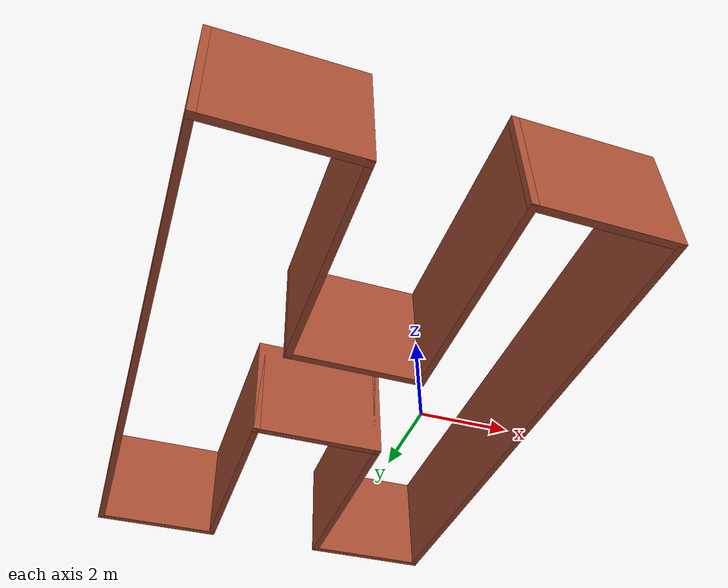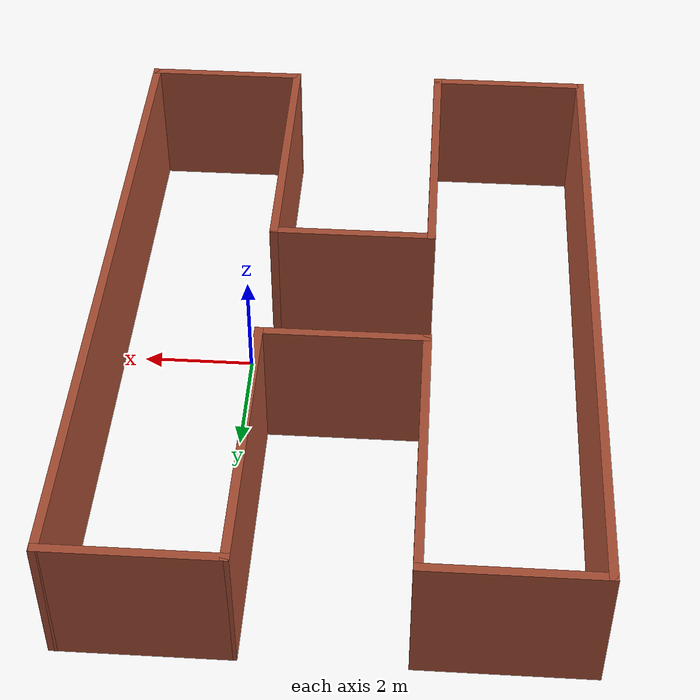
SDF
<?xml version='1.0'?>
<sdf version='1.6'>
  <model name='Home'>
    <pose frame=''>-1.82111 0.367002 0 0 -0 0</pose>
    <link name='Wall_11'>
      <collision name='Wall_11_Collision'>
        <geometry>
          <box>
            <size>12.5 0.15 2.5</size>
          </box>
        </geometry>
        <pose frame=''>0 0 1.25 0 -0 0</pose>
      </collision>
      <visual name='Wall_11_Visual'>
        <pose frame=''>0 0 1.25 0 -0 0</pose>
        <geometry>
          <box>
            <size>12.5 0.15 2.5</size>
          </box>
        </geometry>
        <material>
          <script>
            <uri>file://media/materials/scripts/gazebo.material</uri>
            <name>Gazebo/Bricks</name>
          </script>
          <ambient>1 1 1 1</ambient>
        </material>
        <meta>
          <layer>0</layer>
        </meta>
      </visual>
      <pose frame=''>4.27511 -2e-06 0 0 0 -1.5708</pose>
    </link>
    <link name='Wall_13'>
      <collision name='Wall_13_Collision'>
        <geometry>
          <box>
            <size>3 0.15 2.5</size>
          </box>
        </geometry>
        <pose frame=''>0 0 1.25 0 -0 0</pose>
      </collision>
      <visual name='Wall_13_Visual'>
        <pose frame=''>0 0 1.25 0 -0 0</pose>
        <geometry>
          <box>
            <size>3 0.15 2.5</size>
          </box>
        </geometry>
        <material>
          <script>
            <uri>file://media/materials/scripts/gazebo.material</uri>
            <name>Gazebo/Bricks</name>
          </script>
          <ambient>1 1 1 1</ambient>
        </material>
        <meta>
          <layer>0</layer>
        </meta>
      </visual>
      <pose frame=''>2.85011 -6.175 0 0 -0 3.14159</pose>
    </link>
    <link name='Wall_14'>
      <collision name='Wall_14_Collision'>
        <geometry>
          <box>
            <size>5 0.15 2.5</size>
          </box>
        </geometry>
        <pose frame=''>0 0 1.25 0 -0 0</pose>
      </collision>
      <visual name='Wall_14_Visual'>
        <pose frame=''>0 0 1.25 0 -0 0</pose>
        <geometry>
          <box>
            <size>5 0.15 2.5</size>
          </box>
        </geometry>
        <material>
          <script>
            <uri>file://media/materials/scripts/gazebo.material</uri>
            <name>Gazebo/Bricks</name>
          </script>
          <ambient>1 1 1 1</ambient>
        </material>
        <meta>
          <layer>0</layer>
        </meta>
      </visual>
      <pose frame=''>1.42511 -3.75 0 0 -0 1.5708</pose>
    </link>
    <link name='Wall_15'>
      <collision name='Wall_15_Collision'>
        <geometry>
          <box>
            <size>3 0.15 2.5</size>
          </box>
        </geometry>
        <pose frame=''>0 0 1.25 0 -0 0</pose>
      </collision>
      <visual name='Wall_15_Visual'>
        <pose frame=''>0 0 1.25 0 -0 0</pose>
        <geometry>
          <box>
            <size>3 0.15 2.5</size>
          </box>
        </geometry>
        <material>
          <script>
            <uri>file://media/materials/scripts/gazebo.material</uri>
            <name>Gazebo/Bricks</name>
          </script>
          <ambient>1 1 1 1</ambient>
        </material>
        <meta>
          <layer>0</layer>
        </meta>
      </visual>
      <pose frame=''>0.000111 -1.325 0 0 -0 3.14159</pose>
    </link>
    <link name='Wall_16'>
      <collision name='Wall_16_Collision'>
        <geometry>
          <box>
            <size>5 0.15 2.5</size>
          </box>
        </geometry>
        <pose frame=''>0 0 1.25 0 -0 0</pose>
      </collision>
      <visual name='Wall_16_Visual'>
        <pose frame=''>0 0 1.25 0 -0 0</pose>
        <geometry>
          <box>
            <size>5 0.15 2.5</size>
          </box>
        </geometry>
        <material>
          <script>
            <uri>file://media/materials/scripts/gazebo.material</uri>
            <name>Gazebo/Bricks</name>
          </script>
          <ambient>1 1 1 1</ambient>
        </material>
        <meta>
          <layer>0</layer>
        </meta>
      </visual>
      <pose frame=''>-1.42489 -3.75 0 0 0 -1.5708</pose>
    </link>
    <link name='Wall_2'>
      <collision name='Wall_2_Collision'>
        <geometry>
          <box>
            <size>3 0.15 2.5</size>
          </box>
        </geometry>
        <pose frame=''>0 0 1.25 0 -0 0</pose>
      </collision>
      <visual name='Wall_2_Visual'>
        <pose frame=''>0 0 1.25 0 -0 0</pose>
        <geometry>
          <box>
            <size>3 0.15 2.5</size>
          </box>
        </geometry>
        <material>
          <script>
            <uri>file://media/materials/scripts/gazebo.material</uri>
            <name>Gazebo/Bricks</name>
          </script>
          <ambient>1 1 1 1</ambient>
        </material>
        <meta>
          <layer>0</layer>
        </meta>
      </visual>
      <pose frame=''>-2.85011 6.1748 0 0 -0 0</pose>
    </link>
    <link name='Wall_20'>
      <collision name='Wall_20_Collision'>
        <geometry>
          <box>
            <size>3 0.15 2.5</size>
          </box>
        </geometry>
        <pose frame=''>0 0 1.25 0 -0 0</pose>
      </collision>
      <visual name='Wall_20_Visual'>
        <pose frame=''>0 0 1.25 0 -0 0</pose>
        <geometry>
          <box>
            <size>3 0.15 2.5</size>
          </box>
        </geometry>
        <material>
          <script>
            <uri>file://media/materials/scripts/gazebo.material</uri>
            <name>Gazebo/Bricks</name>
          </script>
          <ambient>1 1 1 1</ambient>
        </material>
        <meta>
          <layer>0</layer>
        </meta>
      </visual>
      <pose frame=''>-2.84989 -6.175 0 0 -0 3.14159</pose>
    </link>
    <link name='Wall_21'>
      <collision name='Wall_21_Collision'>
        <geometry>
          <box>
            <size>12.4998 0.15 2.5</size>
          </box>
        </geometry>
        <pose frame=''>0 0 1.25 0 -0 0</pose>
      </collision>
      <visual name='Wall_21_Visual'>
        <pose frame=''>0 0 1.25 0 -0 0</pose>
        <geometry>
          <box>
            <size>12.4998 0.15 2.5</size>
          </box>
        </geometry>
        <material>
          <script>
            <uri>file://media/materials/scripts/gazebo.material</uri>
            <name>Gazebo/Bricks</name>
          </script>
          <ambient>1 1 1 1</ambient>
        </material>
        <meta>
          <layer>0</layer>
        </meta>
      </visual>
      <pose frame=''>-4.275 -0.000101 0 0 -0 1.57081</pose>
    </link>
    <link name='Wall_5'>
      <collision name='Wall_5_Collision'>
        <geometry>
          <box>
            <size>5 0.15 2.5</size>
          </box>
        </geometry>
        <pose frame=''>0 0 1.25 0 -0 0</pose>
      </collision>
      <visual name='Wall_5_Visual'>
        <pose frame=''>0 0 1.25 0 -0 0</pose>
        <geometry>
          <box>
            <size>5 0.15 2.5</size>
          </box>
        </geometry>
        <material>
          <script>
            <uri>file://media/materials/scripts/gazebo.material</uri>
            <name>Gazebo/Bricks</name>
          </script>
          <ambient>1 1 1 1</ambient>
        </material>
        <meta>
          <layer>0</layer>
        </meta>
      </visual>
      <pose frame=''>-1.42511 3.7498 0 0 0 -1.5708</pose>
    </link>
    <link name='Wall_6'>
      <collision name='Wall_6_Collision'>
        <geometry>
          <box>
            <size>3 0.15 2.5</size>
          </box>
        </geometry>
        <pose frame=''>0 0 1.25 0 -0 0</pose>
      </collision>
      <visual name='Wall_6_Visual'>
        <pose frame=''>0 0 1.25 0 -0 0</pose>
        <geometry>
          <box>
            <size>3 0.15 2.5</size>
          </box>
        </geometry>
        <material>
          <script>
            <uri>file://media/materials/scripts/gazebo.material</uri>
            <name>Gazebo/Bricks</name>
          </script>
          <ambient>1 1 1 1</ambient>
        </material>
        <meta>
          <layer>0</layer>
        </meta>
      </visual>
      <pose frame=''>-0.000109 1.3248 0 0 -0 0</pose>
    </link>
    <link name='Wall_7'>
      <collision name='Wall_7_Collision'>
        <geometry>
          <box>
            <size>5 0.15 2.5</size>
          </box>
        </geometry>
        <pose frame=''>0 0 1.25 0 -0 0</pose>
      </collision>
      <visual name='Wall_7_Visual'>
        <pose frame=''>0 0 1.25 0 -0 0</pose>
        <geometry>
          <box>
            <size>5 0.15 2.5</size>
          </box>
        </geometry>
        <material>
          <script>
            <uri>file://media/materials/scripts/gazebo.material</uri>
            <name>Gazebo/Bricks</name>
          </script>
          <ambient>1 1 1 1</ambient>
        </material>
        <meta>
          <layer>0</layer>
        </meta>
      </visual>
      <pose frame=''>1.42489 3.7498 0 0 -0 1.5708</pose>
    </link>
    <link name='Wall_8'>
      <collision name='Wall_8_Collision'>
        <geometry>
          <box>
            <size>3 0.15 2.5</size>
          </box>
        </geometry>
        <pose frame=''>0 0 1.25 0 -0 0</pose>
      </collision>
      <visual name='Wall_8_Visual'>
        <pose frame=''>0 0 1.25 0 -0 0</pose>
        <geometry>
          <box>
            <size>3 0.15 2.5</size>
          </box>
        </geometry>
        <material>
          <script>
            <uri>file://media/materials/scripts/gazebo.material</uri>
            <name>Gazebo/Bricks</name>
          </script>
          <ambient>1 1 1 1</ambient>
        </material>
        <meta>
          <layer>0</layer>
        </meta>
      </visual>
      <pose frame=''>2.85 6.1749 0 0 -0 7e-05</pose>
    </link>
    <static>1</static>
  </model>
</sdf>
